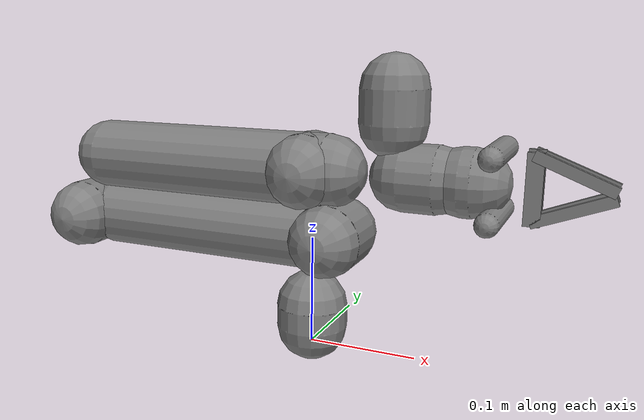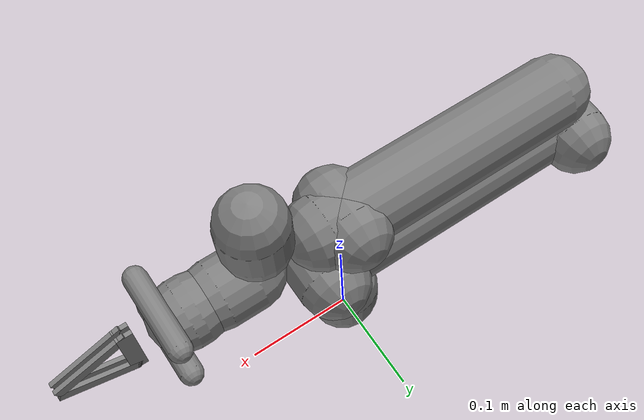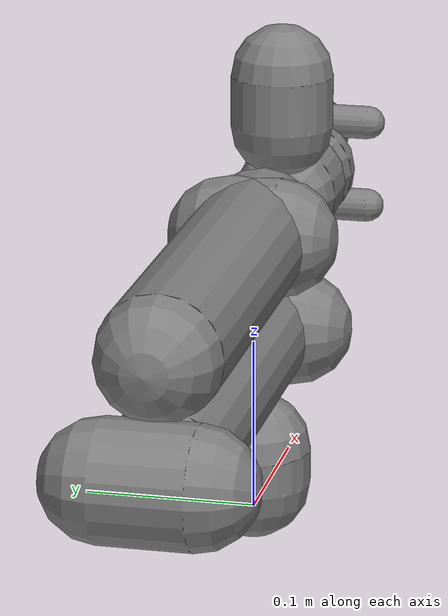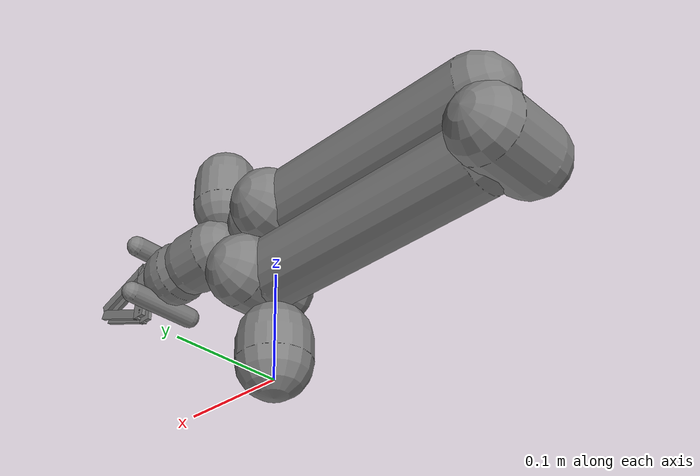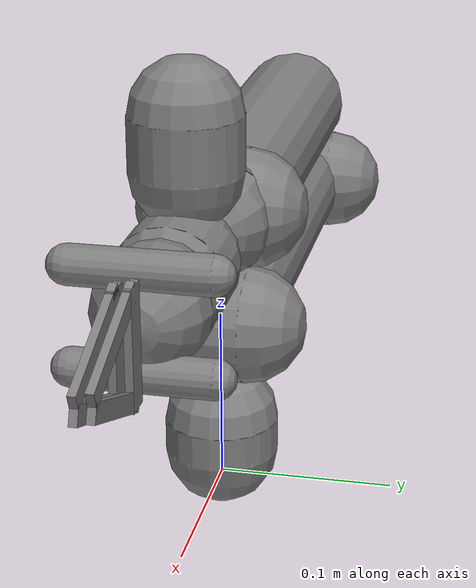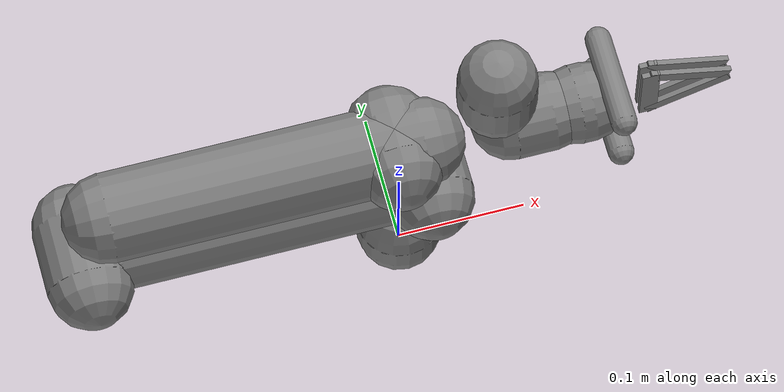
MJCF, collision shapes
<mujoco model="yam_linear_v0">
  <compiler angle="radian" meshdir="assets/"/>

  <option integrator="implicitfast"/>

  <size nkey="1"/>

  <visual>
    <headlight diffuse="0.8 0.8 0.8" ambient="0.3 0.3 0.3" specular="0.3 0.3 0.3"/>
  </visual>

  <default>
    <default class="yam">
      <joint frictionloss="0.1"/>
      <general biastype="affine" biasprm="0 -1"/>
      <default class="dm4340">
        <joint armature="0.032"/>
        <general forcerange="-28 28" gainprm="40" biasprm="0 -40 -2.5"/>
      </default>
      <default class="dm4310">
        <joint armature="0.0018"/>
        <general forcerange="-10 10" gainprm="10" biasprm="0 -10 -1"/>
      </default>
      <default class="visual">
        <geom type="mesh" contype="0" conaffinity="0" density="0" material="black"/>
      </default>
      <default class="collision">
        <geom type="capsule" group="4"/>
        <default class="sphere_collision">
          <geom size="0.0006 0 0" type="sphere" rgba="1 0 0 1"/>
        </default>
      </default>
      <default class="finger">
        <joint type="slide" armature="0.1"/>
        <general ctrlrange="0 0.1" gainprm="100" biasprm="0 -100 -10"/>
      </default>
    </default>
  </default>

  <asset>
    <material name="black" rgba="0.25 0.25 0.25 1"/>
    <material name="white" rgba="0.9 0.9 0.9 1"/>
    <mesh name="model2" file="model2.obj"/>
    <mesh name="model2__2" file="model2__2.obj"/>
    <mesh name="model2__3" file="model2__3.obj"/>
    <mesh name="model2__4" file="model2__4.obj"/>
    <mesh name="model2__5" file="model2__5.obj"/>
    <mesh name="model2__6" file="model2__6.obj"/>
    <mesh name="model2__7" file="model2__7.obj"/>
    <mesh name="model2__8" file="model2__8.obj"/>
    <mesh name="model2__9" file="model2__9.obj"/>
    <mesh name="model2__10" file="model2__10.obj"/>
    <mesh name="model2__11" file="model2__11.obj"/>
    <mesh name="model2__12" file="model2__12.obj"/>
    <mesh name="model2__13" file="model2__13.obj"/>
    <mesh name="model2__14" file="model2__14.obj"/>
    <mesh name="model2__15" file="model2__15.obj"/>
    <mesh name="model2__16" file="model2__16.obj"/>
    <mesh name="model2__17" file="model2__17.obj"/>

    <mesh name="model_gripper" file="gripper_linear.obj"/>
    <mesh name="model_tip_left" file="tip_left_linear.obj"/>
    <mesh name="model_tip_right" file="tip_right_linear.obj"/>
  </asset>

  <worldbody>
    <light name="spotlight" target="link_6" pos="0 0 1" dir="0 0 -1" mode="targetbodycom"/>
    <body name="arm" childclass="yam">
      <geom class="visual" pos="0 0 -0.0006" quat="0.707107 0 0 0.707107" mesh="model2"/>
      <geom class="collision" size="0.033 0.01" pos="0 0 0.026"/>
      <body name="link_1" pos="0 0 0.0631" quat="0.707107 0 0 0.707107">
        <inertial pos="-0.00192861 -0.00795735 0.0208176" quat="0.297851 0.642634 0.360045 0.607185" mass="0.12415" diaginertia="0.000180751 0.000145532 5.89179e-05"/>
        <joint name="joint1" class="dm4340" pos="0 0 0" axis="0 0 1" range="-2.61799 3.05433"/>
        <geom class="visual" pos="5.26159e-07 2.34355e-07 -0.0632" quat="1 0 0 0" mesh="model2__2"/>
        <body name="link_2" pos="2.5e-05 -0.02 0.0409" quat="0.5 0.5 0.5 0.5" gravcomp="1">
          <inertial pos="0.132008 2.10599e-06 0.000293073" quat="0.5 0.5 0.5 0.5" mass="1.24434" diaginertia="0.0121902 0.0121318 0.000683304"/>
          <joint name="joint2" class="dm4340" pos="0 0 0" axis="0 0 1" range="0 3.66519"/>
          <geom class="visual" pos="0.0199992 -0.1041 -2.44738e-05" quat="0.5 -0.5 -0.5 -0.5" mesh="model2__3"/>
          <geom class="visual" pos="0.0199992 -0.1041 -2.44738e-05" quat="0.5 -0.5 -0.5 -0.5" mesh="model2__4"/>
          <geom class="visual" pos="0.0199992 -0.1041 -2.44738e-05" quat="0.5 -0.5 -0.5 -0.5" material="white" mesh="model2__5"/>
          <geom class="collision" size="0.032 0.11" pos="0.13 0 0" quat="0.707107 0 0.707107 0"/>
          <geom class="collision" size="0.033 0.02"/>
          <geom class="collision" size="0.033 0.025" pos="0.265 0 0"/>
          <body name="link_3" pos="0.264 0 0" quat="0 1 0 0" gravcomp="1">
            <inertial pos="-0.121816 -0.054846 -0.000111108" quat="0.5 0.5 0.5 0.5" mass="0.853698" diaginertia="0.00699732 0.00696112 0.000788244"/>
            <joint name="joint3" class="dm4340" pos="0 0 0" axis="0 0 1" range="0 3.66519"/>
            <geom class="visual" pos="-0.244001 0.104101 2.44738e-05" quat="0.5 0.5 0.5 -0.5" mesh="model2__6"/>
            <geom class="visual" pos="-0.244001 0.104101 2.44738e-05" quat="0.5 0.5 0.5 -0.5" mesh="model2__7"/>
            <geom class="visual" pos="-0.244001 0.104101 2.44738e-05" quat="0.5 0.5 0.5 -0.5" material="white" mesh="model2__8"/>
            <geom class="visual" pos="-0.244001 0.104101 2.44738e-05" quat="0.5 0.5 0.5 -0.5" mesh="model2__9"/>
            <geom class="collision" size="0.034 0.12" pos="-0.14 -0.06 0" quat="0.707107 0 0.707107 0"/>
            <geom class="collision" size="0.034 0.015" pos="-0.24 -0.06 0"/>
            <body name="link_4" pos="-0.245 -0.06 0" gravcomp="1">
              <inertial pos="-0.0769778 -0.0527104 0.000154878" quat="0.66661 0.66661 -0.235862 -0.235862" mass="0.463511" diaginertia="0.000791532 0.000744733 0.000282116"/>
              <joint name="joint4" class="dm4310" pos="0 0 0" axis="0 0 1" range="-1.5708 1.5708"/>
              <geom class="visual" pos="0.00100023 0.164101 2.44738e-05" quat="0.5 0.5 0.5 -0.5" mesh="model2__10"/>
              <geom class="collision" size="0.03 0.015" pos="-0.073 -0.06 0" quat="0.707107 0.707107 0 0"/>
              <body name="link_5" pos="-0.074 -0.0395 2.5e-05" quat="0.5 -0.5 0.5 0.5" gravcomp="1">
                <inertial pos="3.64861e-05 0.00025665 0.0353526" mass="0.350962" diaginertia="0.000197802 0.0001775 0.000147402"/>
                <joint name="joint5" class="dm4310" pos="0 0 0" axis="0 0 1" range="-1.5708 1.5708"/>
                <geom class="visual" pos="0 -0.0749971 0.203601" quat="1.32679e-06 1 0 0" mesh="model2__11"/>
                <geom class="collision" size="0.03 0.015" pos="0 0.025 0.0395" quat="0.707107 0.707107 0 0"/>
                <body name="link_6" pos="0 0.0353 0.0395" quat="0.707107 -0.707107 0 0" gravcomp="1">
                  <joint name="joint6" class="dm4310" pos="0 0 0" axis="0 0 -1" range="-2.0944 2.0944"/>
                  <geom name="link6_visual" class="visual" pos="0 0 0.027" quat="4.32978028e-17  7.07106781e-01 -7.07106781e-01  4.32978028e-17" mesh="model_gripper"/>
                  <geom class="collision" size="0.01 0.035" pos="0 0.026 0.052" quat="0.707107 0 0.707107 0"/>
                  <geom class="collision" size="0.03 0.005" pos="0 0 0.03" quat="0.707107 0 0 0.707107"/>
                  <geom class="collision" size="0.01 0.035" pos="0 -0.026 0.052" quat="0.707107 0 0.707107 0"/>
                  <site name="tcp_site" pos="0 0 0" quat="0.707107 0 0 -0.707107" group="4" rgba="1 0 0 1"/>
                  <site name="grasp_site" pos="0 0 0.1347" quat="0.707107 0 0 -0.707107" group="4" rgba="0 1 0 1"/>
                  <body name="link_left_finger" pos="-0.037 0.0392 0.0605" quat="0.707107 0 0.707107 0" gravcomp="1">
                    <joint name="left_finger" class="finger" pos="0 0 0" axis="0 0 1" range="-0.0485 0"/>
                    <geom name="left_tip_visual" class="visual" pos="-0.03992 -0.0392 0.049" quat="0.5 0.5 0.5 0.5" mesh="model_tip_left"/>
                    <geom name="left_tip_collider_0" type="box" pos="-0.021 -0.04 0.0331" size="0.0068 0.03 0.002" class="collision"/>
                    <geom name="left_tip_collider_1" type="box" pos="-0.051 -0.025 0.0331" quat="0.56116805 0.  0.  0.82770189" size="0.0048 0.034 0.002" class="collision"/>
                    <geom name="left_tip_collider_2" type="box" pos="-0.051 -0.055 0.0331" quat="0.82533561 0.  0. 0.56464247" size="0.0048 0.034 0.002" class="collision"/>
                  </body>
                  <body name="link_right_finger" pos="0.037 -0.0392 0.0605" quat="0.707107 0 0.707107 0" gravcomp="1">
                    <joint name="right_finger" class="finger" pos="0 0 0" axis="0 0 -1" range="-0.0485 0"/>
                    <geom name="right_tip_visual" class="visual" pos="-0.03992 0.0392 -0.049" quat="0.5  0.5  0.5 0.5" mesh="model_tip_right"/>
                    <geom name="right_tip_collider_0" type="box" pos="-0.021 0.04 -0.0331" size="0.0068 0.03 0.002" class="collision"/>
                    <geom name="right_tip_collider_1" type="box" pos="-0.051 0.025 -0.0331" quat="0.56116805  0.  0. -0.82770189" size="0.0048 0.034 0.002" class="collision"/>
                    <geom name="right_tip_collider_2" type="box" pos="-0.051 0.055 -0.0331" quat="0.82533561  0.   0. -0.56464247" size="0.0048 0.034 0.002" class="collision"/>
                  </body>
                </body>
              </body>
            </body>
          </body>
        </body>
      </body>
    </body>
  </worldbody>

  <actuator>
    <general name="joint1" class="dm4340" joint="joint1" ctrlrange="-2.61799 3.05433"/>
    <general name="joint2" class="dm4340" joint="joint2" ctrlrange="0 3.66519"/>
    <general name="joint3" class="dm4340" joint="joint3" ctrlrange="0 3.66519"/>
    <general name="joint4" class="dm4310" joint="joint4" ctrlrange="-1.5708 1.5708" gainprm="20" biasprm="0 -20 -0.5"/>
    <general name="joint5" class="dm4310" joint="joint5" ctrlrange="-1.5708 1.5708"/>
    <general name="joint6" class="dm4310" joint="joint6" ctrlrange="-2.0944 2.0944"/>
    <general name="gripper_left_tip" class="finger" joint="left_finger" ctrlrange="-0.0475 0" gainprm="100" biasprm="0 -100 -10"/>
    <general name="gripper_right_tip" class="finger" joint="right_finger" ctrlrange="-0.0475 0" gainprm="100" biasprm="0 -100 -10"/>
  </actuator>

</mujoco>
